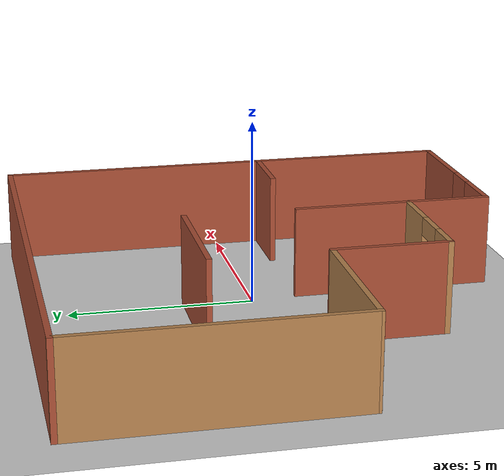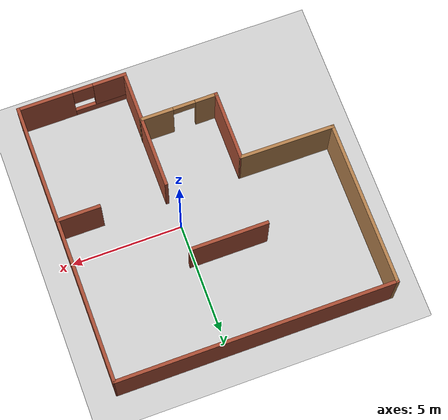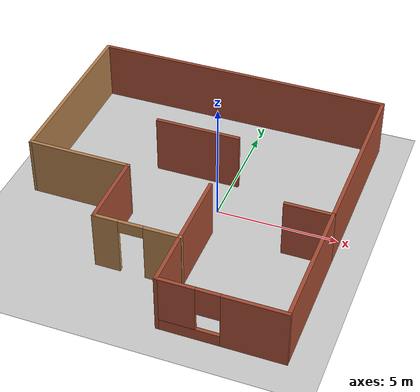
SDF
<sdf version="1.6">
 <world name="default">
  <light name="sun" type="directional">
   <pose>0 0 10 0 -0 0</pose>
   <diffuse>0.8 0.8 0.8 1</diffuse>
   <specular>0.2 0.2 0.2 1</specular>
   <attenuation>
    <range>1000</range>
    <constant>0.9</constant>
    <linear>0.01</linear>
    <quadratic>0.001</quadratic>
   </attenuation>
   <direction>-0.5 0.1 -0.9</direction>
  </light>
  <model name="ground_plane">
   <static>1</static>
   <link name="link">
    <collision name="collision">
     <geometry><plane><normal>0 0 1</normal><size>100 100</size></plane></geometry>
     <surface><friction><ode><mu>100</mu><mu2>50</mu2></ode></friction></surface>
    </collision>
    <visual name="visual">
     <cast_shadows>0</cast_shadows>
     <geometry><plane><normal>0 0 1</normal><size>100 100</size></plane></geometry>
     <material>
      <script><uri>file://media/materials/scripts/gazebo.material</uri><name>Gazebo/Grey</name></script>
     </material>
    </visual>
   </link>
  </model>
  <gravity>0 0 -9.8</gravity>
  <magnetic_field>6e-06 2.3e-05 -4.2e-05</magnetic_field>
  <atmosphere type="adiabatic"/>
  <physics name="default_physics" default="0" type="ode">
   <max_step_size>0.001</max_step_size>
   <real_time_factor>1</real_time_factor>
   <real_time_update_rate>1000</real_time_update_rate>
  </physics>
  <scene><ambient>0.4 0.4 0.4 1</ambient><background>0.7 0.7 0.7 1</background><shadows>1</shadows></scene>
  <spherical_coordinates>
   <surface_model>EARTH_WGS84</surface_model>
   <latitude_deg>0</latitude_deg>
   <longitude_deg>0</longitude_deg>
   <elevation>0</elevation>
   <heading_deg>0</heading_deg>
  </spherical_coordinates>
  <model name="world">
   <pose>-1.19043 -0.293255 0 0 -0 0</pose>
   <link name="Wall_24">
    <collision name="Wall_24_Collision">
     <geometry><box><size>7.5 0.15 2.5</size></box></geometry>
     <pose>0 0 1.25 0 -0 0</pose>
    </collision>
    <visual name="Wall_24_Visual">
     <pose>0 0 1.25 0 -0 0</pose>
     <geometry><box><size>7.5 0.15 2.5</size></box></geometry>
     <material>
      <script><uri>file://media/materials/scripts/gazebo.material</uri><name>Gazebo/Bricks</name></script>
      <ambient>1 1 1 1</ambient>
     </material>
     <meta><layer>0</layer></meta>
    </visual>
    <pose>6.22719 2.66956 0 0 0 -1.5708</pose>
   </link>
   <link name="Wall_26">
    <collision name="Wall_26_Collision">
     <geometry><box><size>5.5 0.15 2.5</size></box></geometry>
     <pose>0 0 1.25 0 -0 0</pose>
    </collision>
    <visual name="Wall_26_Visual">
     <pose>0 0 1.25 0 -0 0</pose>
     <geometry><box><size>5.5 0.15 2.5</size></box></geometry>
     <material>
      <script><uri>file://media/materials/scripts/gazebo.material</uri><name>Gazebo/Bricks</name></script>
      <ambient>1 1 1 1</ambient>
     </material>
     <meta><layer>0</layer></meta>
    </visual>
    <pose>6.22719 -3.68044 0 0 0 -1.5708</pose>
   </link>
   <link name="Wall_28">
    <pose>3.80219 -6.35544 0 0 -0 3.14159</pose>
    <visual name="Wall_28_Visual_0">
     <pose>-1.24054 0 1.25 0 -0 0</pose>
     <geometry><box><size>2.51893 0.15 2.5</size></box></geometry>
     <material>
      <script><uri>file://media/materials/scripts/gazebo.material</uri><name>Gazebo/Bricks</name></script>
      <ambient>1 1 1 1</ambient>
     </material>
     <meta><layer>0</layer></meta>
    </visual>
    <collision name="Wall_28_Collision_0">
     <geometry><box><size>2.51893 0.15 2.5</size></box></geometry>
     <pose>-1.24054 0 1.25 0 -0 0</pose>
    </collision>
    <visual name="Wall_28_Visual_1">
     <pose>1.25946 0 0.25 0 -0 0</pose>
     <geometry><box><size>2.48107 0.15 0.5</size></box></geometry>
     <material>
      <script><uri>file://media/materials/scripts/gazebo.material</uri><name>Gazebo/Bricks</name></script>
      <ambient>1 1 1 1</ambient>
     </material>
     <meta><layer>0</layer></meta>
    </visual>
    <collision name="Wall_28_Collision_1">
     <geometry><box><size>2.48107 0.15 0.5</size></box></geometry>
     <pose>1.25946 0 0.25 0 -0 0</pose>
    </collision>
    <visual name="Wall_28_Visual_2">
     <pose>1.7279 0 1.5 0 -0 0</pose>
     <geometry><box><size>1.54419 0.15 2</size></box></geometry>
     <material>
      <script><uri>file://media/materials/scripts/gazebo.material</uri><name>Gazebo/Bricks</name></script>
      <ambient>1 1 1 1</ambient>
     </material>
     <meta><layer>0</layer></meta>
    </visual>
    <collision name="Wall_28_Collision_2">
     <geometry><box><size>1.54419 0.15 2</size></box></geometry>
     <pose>1.7279 0 1.5 0 -0 0</pose>
    </collision>
    <visual name="Wall_28_Visual_3">
     <pose>0.487368 0 1.9 0 -0 0</pose>
     <geometry><box><size>0.936879 0.15 1.2</size></box></geometry>
     <material>
      <script><uri>file://media/materials/scripts/gazebo.material</uri><name>Gazebo/Bricks</name></script>
      <ambient>1 1 1 1</ambient>
     </material>
     <meta><layer>0</layer></meta>
    </visual>
    <collision name="Wall_28_Collision_3">
     <geometry><box><size>0.936879 0.15 1.2</size></box></geometry>
     <pose>0.487368 0 1.9 0 -0 0</pose>
    </collision>
   </link>
   <link name="Wall_30">
    <collision name="Wall_30_Collision">
     <geometry><box><size>5.5 0.15 2.5</size></box></geometry>
     <pose>0 0 1.25 0 -0 0</pose>
    </collision>
    <visual name="Wall_30_Visual">
     <pose>0 0 1.25 0 -0 0</pose>
     <geometry><box><size>5.5 0.15 2.5</size></box></geometry>
     <material>
      <script><uri>file://media/materials/scripts/gazebo.material</uri><name>Gazebo/Bricks</name></script>
      <ambient>1 1 1 1</ambient>
     </material>
     <meta><layer>0</layer></meta>
    </visual>
    <pose>1.37731 -3.68059 0 0 -0 1.57075</pose>
   </link>
   <link name="Wall_37">
    <pose>-0.323065 -4.11374 0 0 -0 3.14159</pose>
    <visual name="Wall_37_Visual_0">
     <pose>-1.0295 0 1.25 0 -0 0</pose>
     <geometry><box><size>1.51801 0.15 2.5</size></box></geometry>
     <material>
      <script><uri>file://media/materials/scripts/gazebo.material</uri><name>Gazebo/Wood</name></script>
      <ambient>1 1 1 1</ambient>
     </material>
     <meta><layer>0</layer></meta>
    </visual>
    <collision name="Wall_37_Collision_0">
     <geometry><box><size>1.51801 0.15 2.5</size></box></geometry>
     <pose>-1.0295 0 1.25 0 -0 0</pose>
    </collision>
    <visual name="Wall_37_Visual_1">
     <pose>1.26224 0 1.25 0 -0 0</pose>
     <geometry><box><size>1.05253 0.15 2.5</size></box></geometry>
     <material>
      <script><uri>file://media/materials/scripts/gazebo.material</uri><name>Gazebo/Wood</name></script>
      <ambient>1 1 1 1</ambient>
     </material>
     <meta><layer>0</layer></meta>
    </visual>
    <collision name="Wall_37_Collision_1">
     <geometry><box><size>1.05253 0.15 2.5</size></box></geometry>
     <pose>1.26224 0 1.25 0 -0 0</pose>
    </collision>
    <visual name="Wall_37_Visual_2">
     <pose>0.232741 0 2.25 0 -0 0</pose>
     <geometry><box><size>1.00646 0.15 0.5</size></box></geometry>
     <material>
      <script><uri>file://media/materials/scripts/gazebo.material</uri><name>Gazebo/Wood</name></script>
      <ambient>1 1 1 1</ambient>
     </material>
     <meta><layer>0</layer></meta>
    </visual>
    <collision name="Wall_37_Collision_2">
     <geometry><box><size>1.00646 0.15 0.5</size></box></geometry>
     <pose>0.232741 0 2.25 0 -0 0</pose>
    </collision>
   </link>
   <link name="Wall_38">
    <collision name="Wall_38_Collision">
     <geometry><box><size>3.23485 0.15 2.5</size></box></geometry>
     <pose>0 0 1.25 0 -0 0</pose>
    </collision>
    <visual name="Wall_38_Visual">
     <pose>0 0 1.25 0 -0 0</pose>
     <geometry><box><size>3.23485 0.15 2.5</size></box></geometry>
     <material>
      <script><uri>file://media/materials/scripts/gazebo.material</uri><name>Gazebo/Bricks</name></script>
      <ambient>1 1 1 1</ambient>
     </material>
     <meta><layer>0</layer></meta>
    </visual>
    <pose>-2.03656 -2.57124 0 0 -0 1.5708</pose>
   </link>
   <link name="Wall_4">
    <collision name="Wall_4_Collision">
     <geometry><box><size>12.5514 0.15 2.5</size></box></geometry>
     <pose>0 0 1.25 0 -0 0</pose>
    </collision>
    <visual name="Wall_4_Visual">
     <pose>0 0 1.25 0 -0 0</pose>
     <geometry><box><size>12.5514 0.15 2.5</size></box></geometry>
     <material>
      <script><uri>file://media/materials/scripts/gazebo.material</uri><name>Gazebo/Bricks</name></script>
      <ambient>1 1 1 1</ambient>
     </material>
     <meta><layer>0</layer></meta>
    </visual>
    <pose>-0.026065 6.35525 0 0 -0 0</pose>
   </link>
   <link name="Wall_40">
    <collision name="Wall_40_Collision">
     <geometry><box><size>3.577 0.15 2.5</size></box></geometry>
     <pose>0 0 1.25 0 -0 0</pose>
    </collision>
    <visual name="Wall_40_Visual">
     <pose>0 0 1.25 0 -0 0</pose>
     <geometry><box><size>3.577 0.15 2.5</size></box></geometry>
     <material>
      <script><uri>file://media/materials/scripts/gazebo.material</uri><name>Gazebo/Bricks</name></script>
      <ambient>1 1 1 1</ambient>
     </material>
     <meta><layer>0</layer></meta>
    </visual>
    <pose>-0.330032 2.10616 0 0 -0 3.14159</pose>
   </link>
   <link name="Wall_47">
    <collision name="Wall_47_Collision">
     <geometry><box><size>4.34015 0.15 2.5</size></box></geometry>
     <pose>0 0 1.25 0 -0 0</pose>
    </collision>
    <visual name="Wall_47_Visual">
     <pose>0 0 1.25 0 -0 0</pose>
     <geometry><box><size>4.34015 0.15 2.5</size></box></geometry>
     <material>
      <script><uri>file://media/materials/scripts/gazebo.material</uri><name>Gazebo/Wood</name></script>
      <ambient>1 1 1 1</ambient>
     </material>
     <meta><layer>0</layer></meta>
    </visual>
    <pose>-4.13157 -1.01124 0 0 0 -0.008353</pose>
   </link>
   <link name="Wall_50">
    <collision name="Wall_50_Collision">
     <geometry><box><size>2 0.15 2.5</size></box></geometry>
     <pose>0 0 1.25 0 -0 0</pose>
    </collision>
    <visual name="Wall_50_Visual">
     <pose>0 0 1.25 0 -0 0</pose>
     <geometry><box><size>2 0.15 2.5</size></box></geometry>
     <material>
      <script><uri>file://media/materials/scripts/gazebo.material</uri><name>Gazebo/Bricks</name></script>
      <ambient>1 1 1 1</ambient>
     </material>
     <meta><layer>0</layer></meta>
    </visual>
    <pose>5.30219 -1.00544 0 0 -0 3.14159</pose>
   </link>
   <link name="Wall_9">
    <collision name="Wall_9_Collision">
     <geometry><box><size>7.49968 0.15 2.5</size></box></geometry>
     <pose>0 0 1.25 0 -0 0</pose>
    </collision>
    <visual name="Wall_9_Visual">
     <pose>0 0 1.25 0 -0 0</pose>
     <geometry><box><size>7.49968 0.15 2.5</size></box></geometry>
     <material>
      <script><uri>file://media/materials/scripts/gazebo.material</uri><name>Gazebo/Wood</name></script>
      <ambient>1 1 1 1</ambient>
     </material>
     <meta><layer>0</layer></meta>
    </visual>
    <pose>-6.22656 2.68075 0 0 -0 1.5708</pose>
   </link>
   <static>1</static>
  </model>
 </world>
</sdf>
